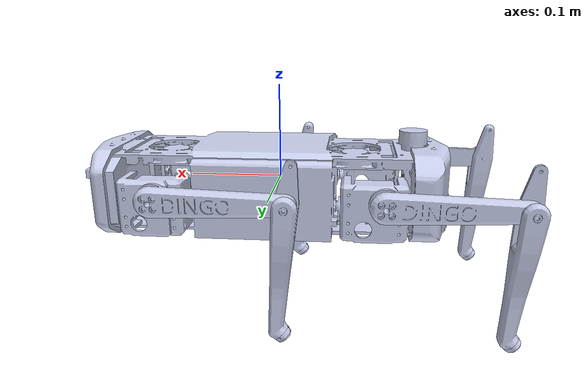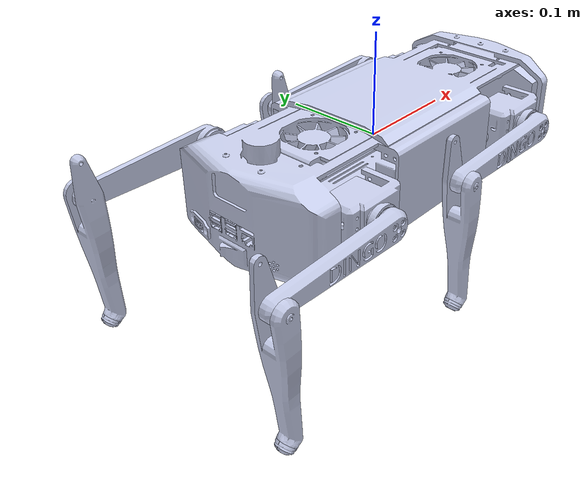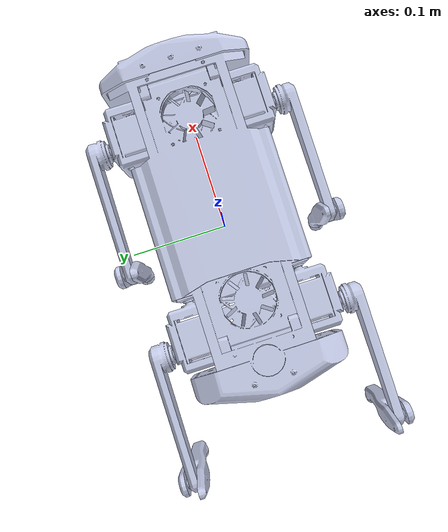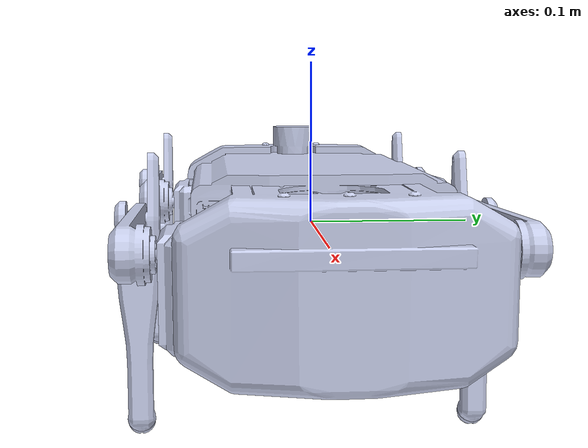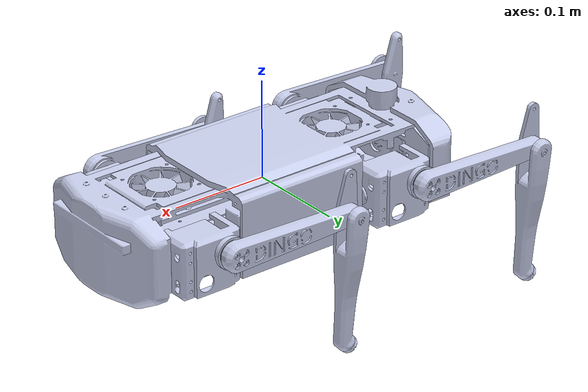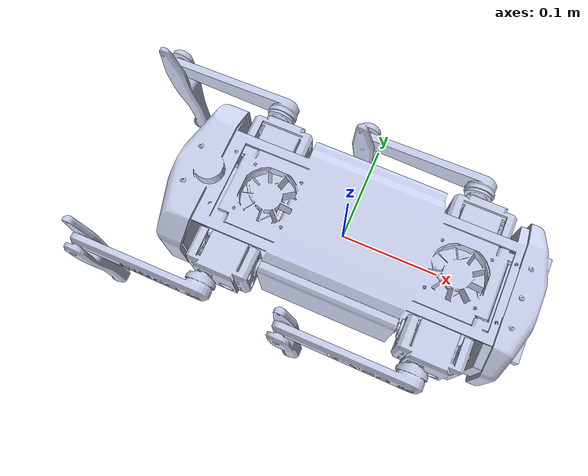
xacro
<?xml version="1.0" encoding="utf-8"?>
<robot name="dingo" xmlns:xacro="http://www.ros.org/wiki/xacro">

  <!-- Maximum torque -->
  <xacro:property name="effort_limit" value="10" />

  <!-- base_link -->
  <link
    name="base_link">

    <inertial>
      <origin
        xyz="0 0 0"
        rpy="0 0 0" />
      <mass
        value="0.81776" />
      <inertia
        ixx="0.00058474"
        ixy="-1.0045E-06"
        ixz="1.0886E-08"
        iyy="0.00029699"
        iyz="3.2027E-08"
        izz="0.00063853" />
    </inertial>

    <visual>
      <origin
        xyz="0 0 0"
        rpy="0 0 0" />
      <geometry>
        <mesh
          filename="/home/robogames/Desktop/Dog/dingo_ws/src/dingo_description/meshes/base_link.dae" />
      </geometry>
      <material
        name="">
        <color
          rgba="0.79216 0.81961 0.93333 1" />
      </material>
    </visual>
    <collision>
      <origin
        xyz="0 0 0"
        rpy="0 0 0" />
      <geometry>
        <mesh
          filename="/home/robogames/Desktop/Dog/dingo_ws/src/dingo_description/meshes/base_collision.STL" />
      </geometry>
    </collision>
  </link>

  <!-- FL_link1 -->
  <link
    name="fl_link1">
    <inertial>
      <origin xyz="0 0 0"/>
      <mass value="0.30000000"/>
      <inertia ixx="0.00019300" ixy="0.00000000" ixz="0.00000000" iyy="0.00014890" iyz="0.00000000" izz="0.00012410"/>
    </inertial>
    <visual>
      <origin
        xyz="0 0 0"
        rpy="0 0 0" />
      <geometry>
        <mesh
          filename="/home/robogames/Desktop/Dog/dingo_ws/src/dingo_description/meshes/FL_link1.dae" />
      </geometry>
      <material
        name="">
        <color
          rgba="0.79216 0.81961 0.93333 1" />
      </material>
    </visual>
    <collision>
      <origin
        xyz="0 0 0"
        rpy="0 0 0" />
      <geometry>
        <mesh
          filename="/home/robogames/Desktop/Dog/dingo_ws/src/dingo_description/meshes/L_link1_collision.STL" />
      </geometry>
    </collision>
  </link>

  <!-- FL_link2 -->
  <link
    name="fl_link2">
    <inertial>
      <origin xyz="0 0 0"/>
      <mass value="0.10000000"/>
      <inertia ixx="0.00000700" ixy="0.00000000" ixz="0.00000444" iyy="0.00017260" iyz="0.00000000" izz="0.00017568"/>
    </inertial>

    <visual>
      <origin
        xyz="0 0 0"
        rpy="0 0 0" />
      <geometry>
        <mesh
          filename="/home/robogames/Desktop/Dog/dingo_ws/src/dingo_description/meshes/L_link2.dae" />
      </geometry>
      <material
        name="">
        <color
          rgba="0.79216 0.81961 0.93333 1" />
      </material>
    </visual>
    <collision>
      <origin
        xyz="0 0 0"
        rpy="0 0 0" />
      <geometry>
        <mesh
          filename="/home/robogames/Desktop/Dog/dingo_ws/src/dingo_description/meshes/L_link2_collision.STL" />
      </geometry>
    </collision>
  </link>

  <!-- FL_link3 -->
  <link
    name="fl_link3">
    <inertial>
      <origin xyz="0 0 0"/>
      <mass value="0.10000000"/>
      <inertia ixx="0.00000936" ixy="-0.00001360" ixz="-0.00000319" iyy="0.00019747" iyz="-0.00000027" izz="0.00019702"/>
    </inertial>

    <visual>
      <origin
        xyz="0 0 0"
        rpy="0 0 0" />
      <geometry>
        <mesh
          filename="/home/robogames/Desktop/Dog/dingo_ws/src/dingo_description/meshes/L_link3.dae" />
      </geometry>
      <material
        name="">
        <color
          rgba="0.79216 0.81961 0.93333 1" />
      </material>
    </visual>
    <collision>
      <origin
        xyz="0 0 0"
        rpy="0 0 0" />
      <geometry>
        <mesh
          filename="/home/robogames/Desktop/Dog/dingo_ws/src/dingo_description/meshes/L_link3_collision.STL" />
      </geometry>
    </collision>
  </link>

  <!-- FL_link4 -->
  <link
    name="fl_link4">
    <inertial>
      <origin xyz="0 0 0"/>
      <mass value="0.02000000"/>
      <inertia ixx="0.00000060" ixy="-0.00000013" ixz="0.00000000" iyy="0.00000058" iyz="0.00000000" izz="0.00000045"/>
    </inertial>

    <visual>
      <origin
        xyz="0 0 0"
        rpy="0 0 0" />
      <geometry>
        <mesh
          filename="/home/robogames/Desktop/Dog/dingo_ws/src/dingo_description/meshes/link4.dae" />
      </geometry>
      <material
        name="">
        <color
          rgba="0.79216 0.81961 0.93333 1" />
      </material>
    </visual>
    <collision>
      <origin
        xyz="0 0 0"
        rpy="0 0 0" />
      <geometry>
        <mesh
          filename="/home/robogames/Desktop/Dog/dingo_ws/src/dingo_description/meshes/link4_collision.STL" />
      </geometry>
    </collision>
  </link>

  <!-- FR_link1 -->
  <link
    name="fr_link1">
    <inertial>
      <origin xyz="0 0 0"/>
      <mass value="0.30000000"/>
      <inertia ixx="0.00019300" ixy="0.00000000" ixz="0.00000000" iyy="0.00014890" iyz="0.00000000" izz="0.00012410"/>
    </inertial>

    <visual>
      <origin
        xyz="0 0 0"
        rpy="0 0 0" />
      <geometry>
        <mesh
          filename="/home/robogames/Desktop/Dog/dingo_ws/src/dingo_description/meshes/FR_link1.dae" />
      </geometry>
      <material
        name="">
        <color
          rgba="0.79216 0.81961 0.93333 1" />
      </material>
    </visual>
    <collision>
      <origin
        xyz="0 0 0"
        rpy="0 0 0" />
      <geometry>
        <mesh
          filename="/home/robogames/Desktop/Dog/dingo_ws/src/dingo_description/meshes/R_link1_collision.STL" />
      </geometry>
    </collision>
  </link>

  <!-- FR_link2 -->
  <link
    name="fr_link2">
    <inertial>
      <origin xyz="0 0 0"/>
      <mass value="0.10000000"/>
      <inertia ixx="0.00000700" ixy="0.00000000" ixz="0.00000444" iyy="0.00017260" iyz="0.00000000" izz="0.00017568"/>
    </inertial>

    <visual>
      <origin
        xyz="0 0 0"
        rpy="0 0 0" />
      <geometry>
        <mesh
          filename="/home/robogames/Desktop/Dog/dingo_ws/src/dingo_description/meshes/R_link2.dae" />
      </geometry>
      <material
        name="">
        <color
          rgba="0.79216 0.81961 0.93333 1" />
      </material>
    </visual>
    <collision>
      <origin
        xyz="0 0 0"
        rpy="0 0 0" />
      <geometry>
        <mesh
          filename="/home/robogames/Desktop/Dog/dingo_ws/src/dingo_description/meshes/R_link2_collision.STL" />
      </geometry>
    </collision>
  </link>

  <!-- FR_link3 -->
  <link
    name="fr_link3">
    <inertial>
      <origin xyz="0 0 0"/>
      <mass value="0.10000000"/>
      <inertia ixx="0.00000936" ixy="-0.00001360" ixz="-0.00000319" iyy="0.00019747" iyz="-0.00000027" izz="0.00019702"/>
    </inertial>

    <visual>
      <origin
        xyz="0 0 0"
        rpy="0 0 0" />
      <geometry>
        <mesh
          filename="/home/robogames/Desktop/Dog/dingo_ws/src/dingo_description/meshes/R_link3.dae" />
      </geometry>
      <material
        name="">
        <color
          rgba="0.79216 0.81961 0.93333 1" />
      </material>
    </visual>
    <collision>
      <origin
        xyz="0 0 0"
        rpy="0 0 0" />
      <geometry>
        <mesh
          filename="/home/robogames/Desktop/Dog/dingo_ws/src/dingo_description/meshes/R_link3_collision.STL" />
      </geometry>
    </collision>
  </link>

  <!-- FR_link4 -->
  <link
    name="fr_link4">
    <inertial>
      <origin xyz="0 0 0"/>
      <mass value="0.02000000"/>
      <inertia ixx="0.00000060" ixy="-0.00000013" ixz="0.00000000" iyy="0.00000058" iyz="0.00000000" izz="0.00000045"/>
    </inertial>

    <visual>
      <origin
        xyz="0 0 0"
        rpy="0 0 0" />
      <geometry>
        <mesh
          filename="/home/robogames/Desktop/Dog/dingo_ws/src/dingo_description/meshes/link4.dae" />
      </geometry>
      <material
        name="">
        <color
          rgba="0.79216 0.81961 0.93333 1" />
      </material>
    </visual>
    <collision>
      <origin
        xyz="0 0 0"
        rpy="0 0 0" />
      <geometry>
        <mesh
          filename="/home/robogames/Desktop/Dog/dingo_ws/src/dingo_description/meshes/link4_collision.STL" />
      </geometry>
    </collision>
  </link>

  <!-- RL_link1 -->
  <link
    name="rl_link1">
    <inertial>
      <origin xyz="0 0 0"/>
      <mass value="0.30000000"/>
      <inertia ixx="0.00019300" ixy="0.00000000" ixz="0.00000000" iyy="0.00014890" iyz="0.00000000" izz="0.00012410"/>
    </inertial>

    <visual>
      <origin
        xyz="0 0 0"
        rpy="0 0 0" />
      <geometry>
        <mesh
          filename="/home/robogames/Desktop/Dog/dingo_ws/src/dingo_description/meshes/RL_link1.dae" />
      </geometry>
      <material
        name="">
        <color
          rgba="0.79216 0.81961 0.93333 1" />
      </material>
    </visual>
    <collision>
      <origin
        xyz="0 0 0"
        rpy="0 0 0" />
      <geometry>
        <mesh
          filename="/home/robogames/Desktop/Dog/dingo_ws/src/dingo_description/meshes/L_link1_collision.STL" />
      </geometry>
    </collision>
  </link>

  <!-- RL_link2 -->
  <link
    name="rl_link2">
    <inertial>
      <origin xyz="0 0 0"/>
      <mass value="0.10000000"/>
      <inertia ixx="0.00000700" ixy="0.00000000" ixz="0.00000444" iyy="0.00017260" iyz="0.00000000" izz="0.00017568"/>
    </inertial>

    <visual>
      <origin
        xyz="0 0 0"
        rpy="0 0 0" />
      <geometry>
        <mesh
          filename="/home/robogames/Desktop/Dog/dingo_ws/src/dingo_description/meshes/L_link2.dae" />
      </geometry>
      <material
        name="">
        <color
          rgba="0.79216 0.81961 0.93333 1" />
      </material>
    </visual>
    <collision>
      <origin
        xyz="0 0 0"
        rpy="0 0 0" />
      <geometry>
        <mesh
          filename="/home/robogames/Desktop/Dog/dingo_ws/src/dingo_description/meshes/L_link2_collision.STL" />
      </geometry>
    </collision>
  </link>

  <!-- RL_link3 -->
  <link
    name="rl_link3">
    <inertial>
      <origin xyz="0 0 0"/>
      <mass value="0.10000000"/>
      <inertia ixx="0.00000936" ixy="-0.00001360" ixz="-0.00000319" iyy="0.00019747" iyz="-0.00000027" izz="0.00019702"/>
    </inertial>

    <visual>
      <origin
        xyz="0 0 0"
        rpy="0 0 0" />
      <geometry>
        <mesh
          filename="/home/robogames/Desktop/Dog/dingo_ws/src/dingo_description/meshes/L_link3.dae" />
      </geometry>
      <material
        name="">
        <color
          rgba="0.79216 0.81961 0.93333 1" />
      </material>
    </visual>
    <collision>
      <origin
        xyz="0 0 0"
        rpy="0 0 0" />
      <geometry>
        <mesh
          filename="/home/robogames/Desktop/Dog/dingo_ws/src/dingo_description/meshes/L_link3_collision.STL" />
      </geometry>
    </collision>
  </link>

  <!-- RL_link4 -->
  <link
    name="rl_link4">
    <inertial>
      <origin xyz="0 0 0"/>
      <mass value="0.02000000"/>
      <inertia ixx="0.00000060" ixy="-0.00000013" ixz="0.00000000" iyy="0.00000058" iyz="0.00000000" izz="0.00000045"/>
    </inertial>

    <visual>
      <origin
        xyz="0 0 0"
        rpy="0 0 0" />
      <geometry>
        <mesh
          filename="/home/robogames/Desktop/Dog/dingo_ws/src/dingo_description/meshes/link4.dae" />
      </geometry>
      <material
        name="">
        <color
          rgba="0.79216 0.81961 0.93333 1" />
      </material>
    </visual>
    <collision>
      <origin
        xyz="0 0 0"
        rpy="0 0 0" />
      <geometry>
        <mesh
          filename="/home/robogames/Desktop/Dog/dingo_ws/src/dingo_description/meshes/link4_collision.STL" />
      </geometry>
    </collision>
  </link>

  <!-- RR_link1 -->
  <link
    name="rr_link1">
    <inertial>
      <origin xyz="0 0 0"/>
      <mass value="0.30000000"/>
      <inertia ixx="0.00019300" ixy="0.00000000" ixz="0.00000000" iyy="0.00014890" iyz="0.00000000" izz="0.00012410"/>
    </inertial>

    <visual>
      <origin
        xyz="0 0 0"
        rpy="0 0 0" />
      <geometry>
        <mesh
          filename="/home/robogames/Desktop/Dog/dingo_ws/src/dingo_description/meshes/RR_link1.dae" />
      </geometry>
      <material
        name="">
        <color
          rgba="0.79216 0.81961 0.93333 1" />
      </material>
    </visual>
    <collision>
      <origin
        xyz="0 0 0"
        rpy="0 0 0" />
      <geometry>
        <mesh
          filename="/home/robogames/Desktop/Dog/dingo_ws/src/dingo_description/meshes/R_link1_collision.STL" />
      </geometry>
    </collision>
  </link>

  <!-- RR_link2 -->
  <link
    name="rr_link2">
    <inertial>
      <origin xyz="0 0 0"/>
      <mass value="0.10000000"/>
      <inertia ixx="0.00000700" ixy="0.00000000" ixz="0.00000444" iyy="0.00017260" iyz="0.00000000" izz="0.00017568"/>
    </inertial>

    <visual>
      <origin
        xyz="0 0 0"
        rpy="0 0 0" />
      <geometry>
        <mesh
          filename="/home/robogames/Desktop/Dog/dingo_ws/src/dingo_description/meshes/R_link2.dae" />
      </geometry>
      <material
        name="">
        <color
          rgba="0.79216 0.81961 0.93333 1" />
      </material>
    </visual>
    <collision>
      <origin
        xyz="0 0 0"
        rpy="0 0 0" />
      <geometry>
        <mesh
          filename="/home/robogames/Desktop/Dog/dingo_ws/src/dingo_description/meshes/R_link2_collision.STL" />
      </geometry>
    </collision>
  </link>

  <!-- RR_link3 -->
  <link
    name="rr_link3">
    <inertial>
      <origin xyz="0 0 0"/>
      <mass value="0.10000000"/>
      <inertia ixx="0.00000936" ixy="-0.00001360" ixz="-0.00000319" iyy="0.00019747" iyz="-0.00000027" izz="0.00019702"/>
    </inertial>

    <visual>
      <origin
        xyz="0 0 0"
        rpy="0 0 0" />
      <geometry>
        <mesh
          filename="/home/robogames/Desktop/Dog/dingo_ws/src/dingo_description/meshes/R_link3.dae" />
      </geometry>
      <material
        name="">
        <color
          rgba="0.79216 0.81961 0.93333 1" />
      </material>
    </visual>
    <collision>
      <origin
        xyz="0 0 0"
        rpy="0 0 0" />
      <geometry>
        <mesh
          filename="/home/robogames/Desktop/Dog/dingo_ws/src/dingo_description/meshes/R_link3_collision.STL" />
      </geometry>
    </collision>
  </link>

  <!-- RR_link4 -->
  <link
    name="rr_link4">
    <inertial>
      <origin xyz="0 0 0"/>
      <mass value="0.02000000"/>
      <inertia ixx="0.00000060" ixy="-0.00000013" ixz="0.00000000" iyy="0.00000058" iyz="0.00000000" izz="0.00000045"/>
    </inertial>

    <visual>
      <origin
        xyz="0 0 0"
        rpy="0 0 0" />
      <geometry>
        <mesh
          filename="/home/robogames/Desktop/Dog/dingo_ws/src/dingo_description/meshes/link4.dae" />
      </geometry>
      <material
        name="">
        <color
          rgba="0.79216 0.81961 0.93333 1" />
      </material>
    </visual>
    <collision>
      <origin
        xyz="0 0 0"
        rpy="0 0 0" />
      <geometry>
        <mesh
          filename="/home/robogames/Desktop/Dog/dingo_ws/src/dingo_description/meshes/link4_collision.STL" />
      </geometry>
    </collision>
  </link>

  <!-- JOINTS -->

  <joint
    name="fl_theta1"
    type="revolute">
    <origin
      xyz="0.11165 0.061 -0.0144"
      rpy="1.5708 0 1.5708" />
    <parent
      link="base_link" />
    <child
      link="fl_link1" />
    <axis
      xyz="0 0 1" />
    <limit
      lower="-0.785398"
      upper="0.785398"
      effort="${effort_limit}"
      velocity="3" />
    <joint_properties damping="1000.0" friction="1000.0"/>
  </joint>
  <joint
    name="fl_theta2"
    type="revolute">
    <origin
      xyz="0.0496000007984339 0.014400000013256 0"
      rpy="1.57079634307336 1.57079568414183 -1.57079631051644" />
    <parent
      link="fl_link1" />
    <child
      link="fl_link2" />
    <axis
      xyz="0 0 1" />
    <limit
      lower="-3"
      upper="3"
      effort="${effort_limit}"
      velocity="3" />
    <joint_properties damping="1000.0" friction="1000.0"/>
  </joint>
  <joint
    name="fl_theta3"
    type="revolute">
    <origin
      xyz="0.129999999999897 0 0"
      rpy="0 0 1.57079594774422" />
    <parent
      link="fl_link2" />
    <child
      link="fl_link3" />
    <axis
      xyz="0 0 1" />
    <limit
      lower="-3"
      upper="3"
      effort="${effort_limit}"
      velocity="3" />
    <joint_properties damping="1000.0" friction="1000.0"/>
  </joint>
  <joint
    name="fl_foot"
    type="fixed">
    <origin
      xyz="0.138136646352288 0 0"
      rpy="0 0 0" />
    <parent
      link="fl_link3" />
    <child
      link="fl_link4" />
    <axis
      xyz="0 0 0" />
  </joint>

  <joint
    name="fr_theta1"
    type="revolute">
    <origin
      xyz="0.111650000000002 -0.0609999999999988 -0.0144000000000242"
      rpy="1.57079632679492 0 1.5707963267949" />
    <parent
      link="base_link" />
    <child
      link="fr_link1" />
    <axis
      xyz="0 0 -1" />
    <limit
      lower="-0.785398"
      upper="0.785398"
      effort="${effort_limit}"
      velocity="3" />
    <joint_properties damping="1000.0" friction="1000.0"/>
  </joint>
  <joint
    name="fr_theta2"
    type="revolute">
    <origin
      xyz="-0.0495999992169121 0.0144000000000242 0"
      rpy="1.57079632309575 1.57079572077363 -1.57079633049404" />
    <parent
      link="fr_link1" />
    <child
      link="fr_link2" />
    <axis
      xyz="0 0 1" />
    <limit
      lower="-3"
      upper="3"
      effort="${effort_limit}"
      velocity="3" />
    <joint_properties damping="1000.0" friction="1000.0"/>
  </joint>
  <joint
    name="fr_theta3"
    type="revolute">
    <origin
      xyz="0.13000000353672 0 0"
      rpy="0 0 1.57079598438978" />
    <parent
      link="fr_link2" />
    <child
      link="fr_link3" />
    <axis
      xyz="0 0 1" />
    <limit
      lower="-3"
      upper="3"
      effort="${effort_limit}"
      velocity="3" />
    <joint_properties damping="1000.0" friction="1000.0"/>
  </joint>
  <joint
    name="fr_foot"
    type="fixed">
    <origin
      xyz="0.13813664635243 0 0"
      rpy="0 0 0" />
    <parent
      link="fr_link3" />
    <child
      link="fr_link4" />
    <axis
      xyz="0 0 0" />
  </joint>

  <joint
    name="rl_theta1"
    type="revolute">
    <origin
      xyz="-0.11165 0.061 -0.0144"
      rpy="1.5708 0 1.5708" />
    <parent
      link="base_link" />
    <child
      link="rl_link1" />
    <axis
      xyz="0 0 1" />
    <limit
      lower="-0.785398"
      upper="0.785398"
      effort="${effort_limit}"
      velocity="3" />
    <joint_properties damping="1000.0" friction="1000.0"/>
  </joint>
  <joint
    name="rl_theta2"
    type="revolute">
    <origin
      xyz="0.0496000007984574 0.014399999996394 0"
      rpy="1.5707963301177 1.57079568414183 -1.57079632347209" />
    <parent
      link="rl_link1" />
    <child
      link="rl_link2" />
    <axis
      xyz="0 0 1" />
    <limit
      lower="-3"
      upper="3"
      effort="${effort_limit}"
      velocity="3" />
    <joint_properties damping="1000.0" friction="1000.0"/>
  </joint>
  <joint
    name="rl_theta3"
    type="revolute">
    <origin
      xyz="0.129999999994849 0 0"
      rpy="0 0 1.57079594787326" />
    <parent
      link="rl_link2" />
    <child
      link="rl_link3" />
    <axis
      xyz="0 0 0.999999999999979" />
    <limit
      lower="-3"
      upper="3"
      effort="${effort_limit}"
      velocity="3" />
    <joint_properties damping="1000.0" friction="1000.0"/>
  </joint>
  <joint
    name="rl_foot"
    type="fixed">
    <origin
      xyz="0.138136646352323 0 0"
      rpy="0 0 0" />
    <parent
      link="rl_link3" />
    <child
      link="rl_link4" />
    <axis
      xyz="0 0 0" />
  </joint>

  <joint
    name="rr_theta1"
    type="revolute">
    <origin
      xyz="-0.111650000000003 -0.0609999999999995 -0.0144000000000178"
      rpy="1.57079632679492 0 1.5707963267949" />
    <parent
      link="base_link" />
    <child
      link="rr_link1" />
    <axis
      xyz="0 0 -1" />
    <limit
      lower="-0.785398"
      upper="0.785398"
      effort="${effort_limit}"
      velocity="3" />
    <joint_properties damping="1000.0" friction="1000.0"/>
  </joint>
  <joint
    name="rr_theta2"
    type="revolute">
    <origin
      xyz="-0.0495999992169147 0.0144000000000178 0"
      rpy="1.57079631992506 1.57079572077363 -1.57079633366473" />
    <parent
      link="rr_link1" />
    <child
      link="rr_link2" />
    <axis
      xyz="0 0 1" />
    <limit
      lower="-3"
      upper="3"
      effort="${effort_limit}"
      velocity="3" />
    <joint_properties damping="1000.0" friction="1000.0"/>
  </joint>
  <joint
    name="rr_theta3"
    type="revolute">
    <origin
      xyz="0.13000000353672 0 0"
      rpy="0 0 1.57079598438978" />
    <parent
      link="rr_link2" />
    <child
      link="rr_link3" />
    <axis
      xyz="0 0 0.999999999999998" />
    <limit
      lower="-3"
      upper="3"
      effort="${effort_limit}"
      velocity="3" />
    <joint_properties damping="1000.0" friction="1000.0"/>
  </joint>
  <joint
    name="rr_foot"
    type="fixed">
    <origin
      xyz="0.138136646352431 0 0"
      rpy="0 0 0" />
    <parent
      link="rr_link3" />
    <child
      link="rr_link4" />
    <axis
      xyz="0 0 0" />
  </joint>

  <!-- ROS control plugin -->

  <!-- IMU sensor -->

  <!-- Joint state publisher plugin -->

  <!-- Transmission -->
  <transmission name="tran1">
    <type>transmission_interface/SimpleTransmission</type>
    <joint name="fr_theta1">
      <hardwareInterface>hardware_interface/PositionJointInterface</hardwareInterface>
    </joint>
    <actuator name="motor1">
      <hardwareInterface>hardware_interface/PositionJointInterface</hardwareInterface>
      <mechanicalReduction>5</mechanicalReduction>
    </actuator>
  </transmission>

  <transmission name="tran2">
    <type>transmission_interface/SimpleTransmission</type>
    <joint name="fr_theta2">
      <hardwareInterface>hardware_interface/PositionJointInterface</hardwareInterface>
    </joint>
    <actuator name="motor2">
      <hardwareInterface>hardware_interface/PositionJointInterface</hardwareInterface>
      <mechanicalReduction>5</mechanicalReduction>
    </actuator>
  </transmission>

  <transmission name="tran3">
    <type>transmission_interface/SimpleTransmission</type>
    <joint name="fr_theta3">
      <hardwareInterface>hardware_interface/PositionJointInterface</hardwareInterface>
    </joint>
    <actuator name="motor3">
      <hardwareInterface>hardware_interface/PositionJointInterface</hardwareInterface>
      <mechanicalReduction>5</mechanicalReduction>
    </actuator>
  </transmission>

  <transmission name="tran4">
    <type>transmission_interface/SimpleTransmission</type>
    <joint name="fl_theta1">
      <hardwareInterface>hardware_interface/PositionJointInterface</hardwareInterface>
    </joint>
    <actuator name="motor4">
      <hardwareInterface>hardware_interface/PositionJointInterface</hardwareInterface>
      <mechanicalReduction>5</mechanicalReduction>
    </actuator>
  </transmission>

  <transmission name="tran5">
    <type>transmission_interface/SimpleTransmission</type>
    <joint name="fl_theta2">
      <hardwareInterface>hardware_interface/PositionJointInterface</hardwareInterface>
    </joint>
    <actuator name="motor5">
      <hardwareInterface>hardware_interface/PositionJointInterface</hardwareInterface>
      <mechanicalReduction>5</mechanicalReduction>
    </actuator>
  </transmission>

  <transmission name="tran6">
    <type>transmission_interface/SimpleTransmission</type>
    <joint name="fl_theta3">
      <hardwareInterface>hardware_interface/PositionJointInterface</hardwareInterface>
    </joint>
    <actuator name="motor6">
      <hardwareInterface>hardware_interface/PositionJointInterface</hardwareInterface>
      <mechanicalReduction>5</mechanicalReduction>
    </actuator>
  </transmission>

  <transmission name="tran7">
    <type>transmission_interface/SimpleTransmission</type>
    <joint name="rr_theta1">
      <hardwareInterface>hardware_interface/PositionJointInterface</hardwareInterface>
    </joint>
    <actuator name="motor7">
      <hardwareInterface>hardware_interface/PositionJointInterface</hardwareInterface>
      <mechanicalReduction>5</mechanicalReduction>
    </actuator>
  </transmission>

  <transmission name="tran8">
    <type>transmission_interface/SimpleTransmission</type>
    <joint name="rr_theta2">
      <hardwareInterface>hardware_interface/PositionJointInterface</hardwareInterface>
    </joint>
    <actuator name="motor8">
      <hardwareInterface>hardware_interface/PositionJointInterface</hardwareInterface>
      <mechanicalReduction>5</mechanicalReduction>
    </actuator>
  </transmission>

  <transmission name="tran9">
    <type>transmission_interface/SimpleTransmission</type>
    <joint name="rr_theta3">
      <hardwareInterface>hardware_interface/PositionJointInterface</hardwareInterface>
    </joint>
    <actuator name="motor9">
      <hardwareInterface>hardware_interface/PositionJointInterface</hardwareInterface>
      <mechanicalReduction>5</mechanicalReduction>
    </actuator>
  </transmission>

  <transmission name="tran10">
    <type>transmission_interface/SimpleTransmission</type>
    <joint name="rl_theta1">
      <hardwareInterface>hardware_interface/PositionJointInterface</hardwareInterface>
    </joint>
    <actuator name="motor10">
      <hardwareInterface>hardware_interface/PositionJointInterface</hardwareInterface>
      <mechanicalReduction>5</mechanicalReduction>
    </actuator>
  </transmission>

  <transmission name="tran11">
    <type>transmission_interface/SimpleTransmission</type>
    <joint name="rl_theta2">
      <hardwareInterface>hardware_interface/PositionJointInterface</hardwareInterface>
    </joint>
    <actuator name="motor11">
      <hardwareInterface>hardware_interface/PositionJointInterface</hardwareInterface>
      <mechanicalReduction>5</mechanicalReduction>
    </actuator>
  </transmission>

  <transmission name="tran12">
    <type>transmission_interface/SimpleTransmission</type>
    <joint name="rl_theta3">
      <hardwareInterface>hardware_interface/PositionJointInterface</hardwareInterface>
    </joint>
    <actuator name="motor12">
      <hardwareInterface>hardware_interface/PositionJointInterface</hardwareInterface>
      <mechanicalReduction>5</mechanicalReduction>
    </actuator>
  </transmission>

  <!-- FR4 friction -->
  <gazebo reference="fr_link4">
    <mu1>1.0</mu1>
    <mu2>1.0</mu2>
    <minDepth>0.0002</minDepth>
    <kp  value="1000000.0"/>
    <kd  value="100.0"/>
  </gazebo>

  <!-- FL4 friction -->
  <gazebo reference="fl_link4">
    <mu1>1.0</mu1>
    <mu2>1.0</mu2>
    <minDepth>0.0002</minDepth>
    <kp  value="1000000.0"/>
    <kd  value="100.0"/>
  </gazebo>

  <!-- RR4 friction -->
  <gazebo reference="rr_link4">
    <mu1>1.0</mu1>
    <mu2>1.0</mu2>
    <minDepth>0.0002</minDepth>
    <kp  value="1000000.0"/>
    <kd  value="100.0"/>
  </gazebo>

  <!-- RL4 friction -->
  <gazebo reference="rl_link4">
    <mu1>1.0</mu1>
    <mu2>1.0</mu2>
    <minDepth>0.0002</minDepth>
    <kp  value="1000000.0"/>
    <kd  value="100.0"/>
  </gazebo>

</robot>
